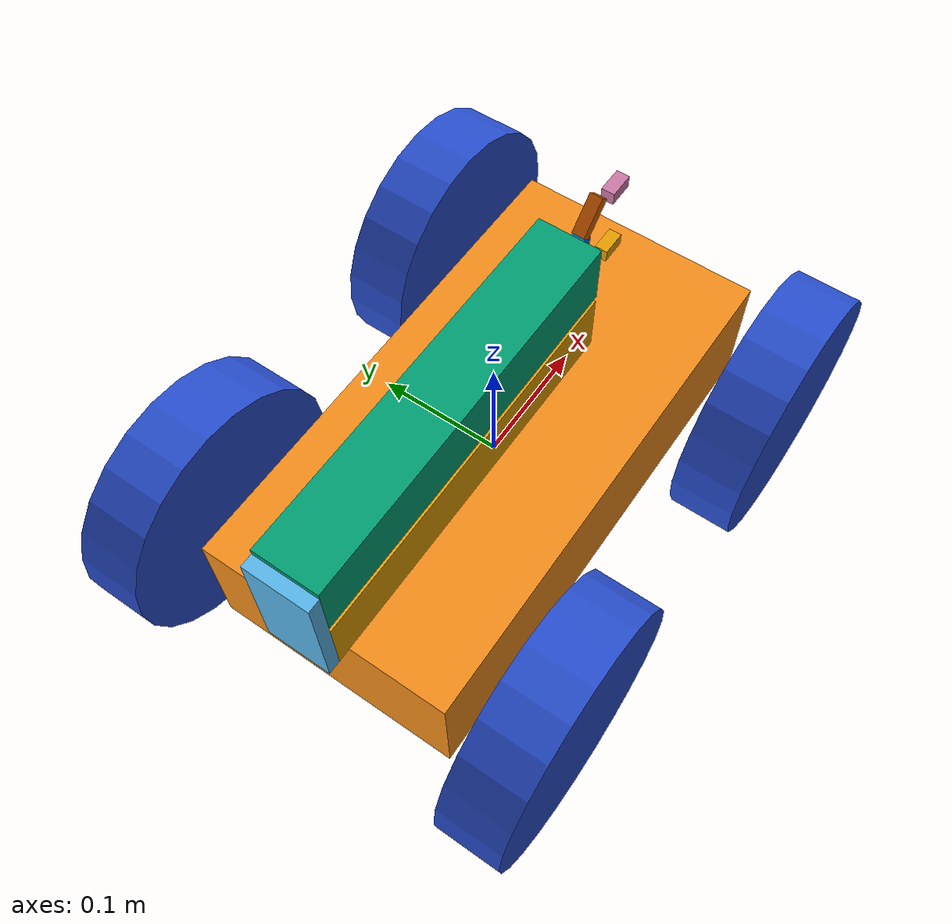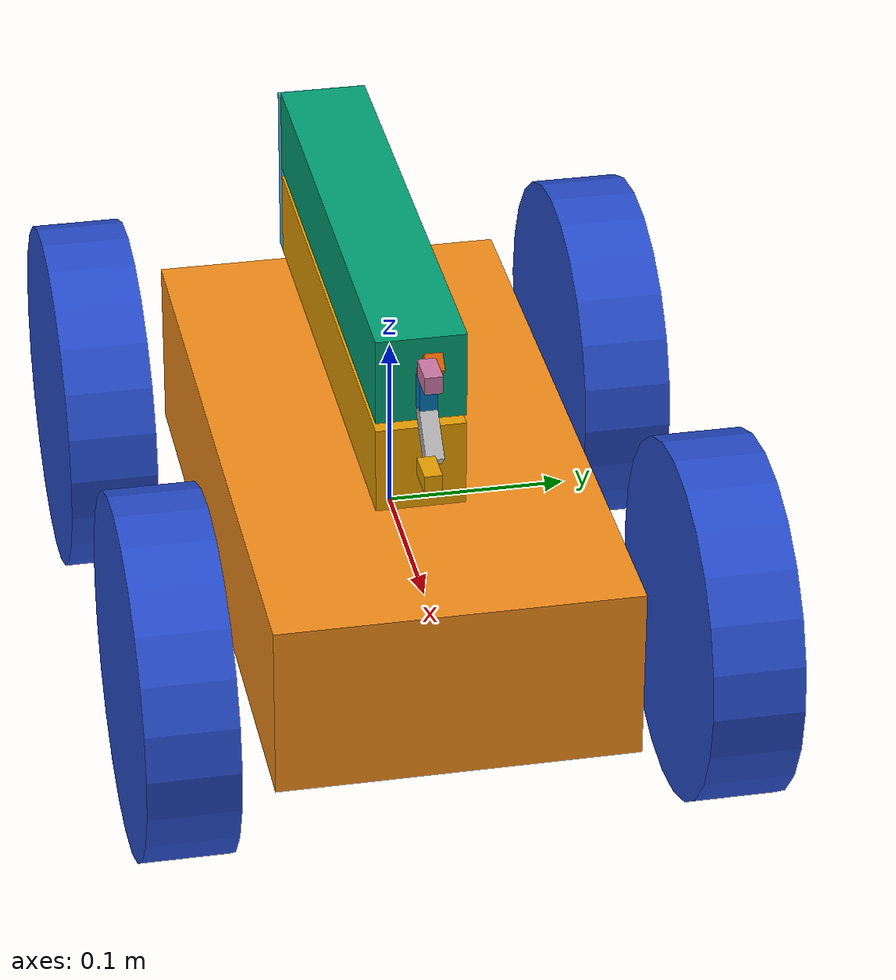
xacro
<?xml version="1.0" ?>
<!-- |    This document was autogenerated by xacro from /home/radi/householder/src/mybot_description/urdf/mybot.xacro | -->
<!-- |    EDITING THIS FILE BY HAND IS NOT RECOMMENDED                                 | -->
<robot name="myrobot" xmlns:xacro="http://www.ros.org/wiki/xacro">
	<gazebo>
        <plugin filename="libgazebo_ros_skid_steer_drive.so" name="skid_steer_drive_controller">
            <alwaysOn>true</alwaysOn>
			<legacyMode>false</legacyMode>
            <updateRate>50</updateRate>
            <leftFrontJoint>left_wheel_hinge</leftFrontJoint>
            <rightFrontJoint>right_wheel_hinge</rightFrontJoint>
			<leftRearJoint>left_wheel_help_hinge</leftRearJoint>
            <rightRearJoint>right_wheel_help_hinge</rightRearJoint>
            <wheelSeparation>0.4</wheelSeparation>
            <wheelDiameter>0.2</wheelDiameter>
			<torque>10</torque>
            <commandTopic>cmd_vel</commandTopic>
            <odometryTopic>odom</odometryTopic>
            <odometryFrame>odom</odometryFrame>
            <robotBaseFrame>chassis</robotBaseFrame>
            <broadcastTF>true</broadcastTF>
            <rosDebugLevel>1</rosDebugLevel>
        </plugin>
    </gazebo>
    <gazebo reference="chassis">
        <material>Gazebo/Orange</material>
        <selfCollide>true</selfCollide>
    </gazebo>
    <gazebo reference="left_wheel">
        <material>Gazebo/Blue</material>
    </gazebo>
    <gazebo reference="right_wheel">
        <material>Gazebo/Blue</material>
    </gazebo>
    <gazebo reference="left_wheel_help">
        <material>Gazebo/Blue</material>
    </gazebo>
    <gazebo reference="right_wheel_help">
        <material>Gazebo/Blue</material>
    </gazebo>
    <gazebo reference="arm_fix">
        <material>Gazebo/Blue</material>
    </gazebo>
    <gazebo reference="link">
        <sensor name="camera" type="depth">
            <update_rate>20</update_rate>
            <camera>
                <horizontal_fov>1.047198</horizontal_fov>
                <image>
                    <width>1080</width>
                    <height>720</height>
                    <format>R8G8B8</format>
                </image>
                <clip>
                    <near>0.01</near>
                    <far>25</far>
                </clip>
            </camera>
            <plugin filename="libgazebo_ros_openni_kinect.so" name="camera_plugin">
                <baseline>0.2</baseline>
                <always_on>1</always_on>
                <updateRate>0.0</updateRate>
                <cameraName>camera</cameraName>
                <imageTopicName>/camera/color/image_raw</imageTopicName>
                <cameraInfoTopicName>/camera/color/camera_info</cameraInfoTopicName>
                <depthImageTopicName>/camera/depth/image_raw</depthImageTopicName>
                <depthImageCameraInfoTopicName>/camera/depth/camera_info</depthImageCameraInfoTopicName>
                <pointCloudTopicName>/camera/depth/points</pointCloudTopicName>
                <frameName>link</frameName>
                <pointCloudCutoff>0.5</pointCloudCutoff>
                <pointCloudCutoffMax>3.0</pointCloudCutoffMax>
                <distortionK1>0</distortionK1>
                <distortionK2>0</distortionK2>
                <distortionK3>0</distortionK3>
                <distortionT1>0</distortionT1>
                <distortionT2>0</distortionT2>
                <CxPrime>0</CxPrime>
                <Cx>0</Cx>
                <Cy>0</Cy>
                <focalLength>0</focalLength>
                <hackBaseline>0</hackBaseline>
            </plugin>
        </sensor>
    </gazebo>
    <gazebo reference="hokuyo">
        <sensor name="head_hokuyo_sensor" type="gpu_ray">
            <visualize>false</visualize>
            <update_rate>20</update_rate>
            <ray>
                <scan>
                    <horizontal>
                        <samples>720</samples>
                        <resolution>1</resolution>
                        <min_angle>-1.5</min_angle>
                        <max_angle>1.5</max_angle>
                    </horizontal>
                </scan>
                <range>
                    <min>0.10</min>
                    <max>20.0</max>
                    <resolution>0.01</resolution>
                </range>
                <noise>
                    <type>gaussian</type>
                    <mean>0.0</mean>
                    <stddev>0.01</stddev>
                </noise>
            </ray>
            <plugin filename="libgazebo_ros_gpu_laser.so" name="gazebo_ros_head_hokuyo_controller">
                <topicName>/mybot/laser/scan</topicName>
                <frameName>hokuyo</frameName>
            </plugin>
        </sensor>
    </gazebo>
    <material name="black">
        <color rgba="0.0 0.0 0.0 1.0" />
    </material>
    <material name="blue">
        <color rgba="0.0 0.0 0.8 1.0" />
    </material>
    <material name="green">
        <color rgba="0.0 0.8 0.0 1.0" />
    </material>
    <material name="grey">
        <color rgba="0.2 0.2 0.2 1.0" />
    </material>
    <material name="orange">
        <color rgba="1.0 0.423529411765 0.0392156862745 1.0" />
    </material>
    <material name="brown">
        <color rgba="0.870588235294 0.811764705882 0.764705882353 1.0" />
    </material>
    <material name="red">
        <color rgba="0.8 0.0 0.0 1.0" />
    </material>
    <material name="white">
        <color rgba="1.0 1.0 1.0 1.0" />
    </material>

    <link name="chassis">

		<inertial>
            <mass value="10.0" />
            <origin rpy=" 0 0 0" xyz="0 0 0.0" />
            <inertia ixx="0.5" ixy="0" ixz="0" iyy="1.0" iyz="0" izz="0.1" />
        </inertial>

        <collision name="collision">
            <origin rpy=" 0 0 0" xyz="0 0 0.0" />
            <geometry>
                <box size="0.4 0.2 0.1" />
            </geometry>
        </collision>
        <visual name="chassis_visual">
            <origin rpy=" 0 0 0" xyz="0 0 0.0" />
            <geometry>
                <box size="0.4 0.2 0.1" />
            </geometry>
        </visual>
    </link>
	<link name="left_wheel_help">
        <collision>
            <origin rpy="0 1.5707 1.5707" xyz="0 0 0" />
            <geometry>
                <cylinder length="0.05" radius="0.1" />
            </geometry>
        </collision>
        <visual>
            <origin rpy="0 1.5707 1.5707" xyz="0 0 0" />
            <geometry>
                <cylinder length="0.05" radius="0.1" />
            </geometry>
        </visual>

		<inertial>
            <origin rpy="0 1.5707 1.5707" xyz="0 0 0" />
            <mass value="5" />
            <cylinder_inertia h="0.05" m="5" r="0.1" />
            <inertia ixx="1.0" ixy="0.0" ixz="0.0" iyy="1.0" iyz="0.0" izz="1.0" />
        </inertial>

    </link>
    <link name="right_wheel_help">
        <collision>
            <origin rpy="0 1.5707 1.5707" xyz="0 0 0" />
            <geometry>
                <cylinder length="0.05" radius="0.1" />
            </geometry>
        </collision>
        <visual>
            <origin rpy="0 1.5707 1.5707" xyz="0 0 0" />
            <geometry>
                <cylinder length="0.05" radius="0.1" />
            </geometry>
        </visual>

<inertial>
            <origin rpy="0 1.5707 1.5707" xyz="0 0 0" />
            <mass value="5" />
            <cylinder_inertia h="0.05" m="5" r="0.1" />
            <inertia ixx="1.0" ixy="0.0" ixz="0.0" iyy="1.0" iyz="0.0" izz="1.0" />
        </inertial>

    </link>
    <link name="left_wheel">
        <!--origin xyz="0.1 0.13 0.1" rpy="0 1.5707 1.5707"/-->
        <collision name="collision">
            <origin rpy="0 1.5707 1.5707" xyz="0 0 0" />
            <geometry>
                <cylinder length="0.05" radius="0.1" />
            </geometry>
        </collision>
        <visual name="left_wheel_visual">
            <origin rpy="0 1.5707 1.5707" xyz="0 0 0" />
            <geometry>
                <cylinder length="0.05" radius="0.1" />
            </geometry>
        </visual>

<inertial>
            <origin rpy="0 1.5707 1.5707" xyz="0 0 0" />
            <mass value="5" />
            <cylinder_inertia h="0.05" m="5" r="0.1" />
            <inertia ixx="1.0" ixy="0.0" ixz="0.0" iyy="1.0" iyz="0.0" izz="1.0" />
        </inertial>

    </link>
    <link name="right_wheel">
        <!--origin xyz="0.1 -0.13 0.1" rpy="0 1.5707 1.5707"/-->
        <collision name="collision">
            <origin rpy="0 1.5707 1.5707" xyz="0 0 0" />
            <geometry>
                <cylinder length="0.05" radius="0.1" />
            </geometry>
        </collision>
        <visual name="right_wheel_visual">
            <origin rpy="0 1.5707 1.5707" xyz="0 0 0" />
            <geometry>
                <cylinder length="0.05" radius="0.1" />
            </geometry>
        </visual>

<inertial>
            <origin rpy="0 1.5707 1.5707" xyz="0 0 0" />
            <mass value="5" />
            <cylinder_inertia h="0.05" m="5" r="0.1" />
            <inertia ixx="1.0" ixy="0.0" ixz="0.0" iyy="1.0" iyz="0.0" izz="1.0" />
        </inertial>

    </link>
    <link name="link">
        <!--box size="0.073000 0.276000 0.072000"/-->

<inertial>
            <mass value="0.001" />
            <origin rpy="0 0 0" xyz="0 0 0" />
            <inertia ixx="0.01" ixy="0.0" ixz="0.0" iyy="0.01" iyz="0.0" izz="0.01" />
        </inertial>

    </link>
    <!-- Hokuyo Laser -->
    <link name="hokuyo">

<inertial>
            <mass value="1e-5" />
            <origin rpy="0 0 0" xyz="0 0 0" />
            <inertia ixx="1e-6" ixy="0" ixz="0" iyy="1e-6" iyz="0" izz="1e-6" />
        </inertial>

    </link>
    <!--     ARM              -->
    <link name="arm_base_plate">

<inertial>
            <origin rpy="0 1.57 1.57" xyz="0 0 0" />
            <mass value="0.001" />
            <cylinder_inertia h="0.01" m="5" r="0.01" />
            <inertia ixx="1.0" ixy="0.0" ixz="0.0" iyy="1.0" iyz="0.0" izz="1.0" />
        </inertial>

    </link>
    <link name="arm_1">
        <pose>0 0 0 0 0 0</pose>

<inertial>
            <mass value="0.003" />
            <origin rpy="0 0 0" xyz="-0.15 0 0" />
            <inertia ixx="0.5" ixy="0" ixz="0" iyy="1.0" iyz="0" izz="0.1" />
        </inertial>

        <collision>
            <origin rpy="0 0 0" xyz="-0.15 0 0" />
            <geometry>
                <box size=".3 .05 .05" />
            </geometry>
        </collision>
        <visual>
            <origin rpy="0 0 0" xyz="-0.15 0 0" />
            <geometry>
                <box size=".3 .05 .05" />
            </geometry>
        </visual>
    </link>
    <link name="arm_connector_1">

<inertial>
            <mass value="0.001" />
            <origin rpy=" 0 0 0" xyz="0.0 0 0" />
            <inertia ixx="0.5" ixy="0" ixz="0" iyy="1.0" iyz="0" izz="0.1" />
        </inertial>

        <collision>
            <geometry>
                <box size=".01 0.05 0.1" />
            </geometry>
        </collision>
        <visual>
            <origin rpy=" 0 0 0" xyz="0 0 0" />
            <geometry>
                <box size=".01 0.05 0.1" />
            </geometry>
        </visual>
    </link>
    <link name="arm_2">

<inertial>
            <mass value="0.002" />
            <origin rpy=" 0 0 0" xyz="0.155 0 0" />
            <inertia ixx="0.5" ixy="0" ixz="0" iyy="1.0" iyz="0" izz="0.1" />
        </inertial>

        <collision>
            <origin rpy="0 0 0" xyz="0.155 0 0" />
            <geometry>
                <box size=".3 .05 .05" />
            </geometry>
        </collision>
        <visual>
            <origin rpy="0 0 0" xyz="0.155 0 0" />
            <geometry>
                <box size=".3 .05 .05" />
            </geometry>
        </visual>
    </link>
    <link name="hand_base_plate">

<inertial>
            <origin rpy="0 1.57 0" xyz="0 0 0" />
            <mass value="0.001" />
            <cylinder_inertia h="0.01" m="5" r="0.01" />
            <inertia ixx="1.0" ixy="0.0" ixz="0.0" iyy="1.0" iyz="0.0" izz="1.0" />
        </inertial>

    </link>
    <joint name="gripper_extension_1" type="continuous">
        <axis xyz="0 0 1" />
        <parent link="chassis" />
        <child link="arm_base_plate" />
        <origin rpy="0 0 0" xyz="0.1 0 0.075" />
		<limit effort="50" velocity="5" />
		<dynamics damping="100.0" friction="0.0" />
    </joint>
    <joint name="gripper_extension_2" type="revolute">
        <axis xyz="0 0 -1" />
        <limit effort="30" lower="0" upper="3.14" velocity="0.5" />
        <parent link="arm_base_plate" />
        <child link="arm_1" />
        <origin rpy="1.571 0 0" xyz="-0.01 0 0" />
		<limit effort="50" velocity="5" />
		<dynamics damping="100.0" friction="0.0" />
    </joint>
    <joint name="gripper_extension_3" type="continuous">
        <origin rpy="1.571 0 0" xyz="-0.305 0.025 0" />
        <parent link="arm_1" />
        <child link="arm_connector_1" />
		<limit effort="50" velocity="5" />
		<dynamics damping="100.0" friction="0.0" />
    </joint>
    <joint name="gripper_extension_4" type="revolute">
        <axis xyz="0 0 1" />
        <limit effort="30" lower="0" upper="3.14" velocity="0.5" />
        <parent link="arm_connector_1" />
        <child link="arm_2" />
        <origin rpy="-1.571 0 0" xyz="0 0 -0.03" />
		<limit effort="50" velocity="5" />
		<dynamics damping="100.0" friction="0.0" />
    </joint>
    <joint name="gripper_extension_5" type="continuous">
        <axis xyz="1 0 0" />
        <parent link="arm_2" />
        <child link="hand_base_plate" />
        <origin rpy="0 0 0" xyz="0.31 0 0" />
    </joint>
    <joint name="camera_joint" type="fixed">
        <axis xyz="0 0 0" />
        <origin rpy="0 0 0" xyz="0.2 0 0.1" />
        <parent link="chassis" />
        <child link="link" />
    </joint>
    <joint name="hokuyo_joint" type="fixed">
        <axis xyz="0 1 0" />
        <origin rpy="0 0 0" xyz="0.2 0 0.2" />
        <parent link="chassis" />
        <child link="hokuyo" />
    </joint>
    <joint name="left_wheel_hinge" type="continuous">
        <origin rpy="0 0 0" xyz="0.15 0.15 0" />
        <child link="left_wheel" />
        <parent link="chassis" />
        <axis rpy="0 0 0" xyz="0 1 0" />
         <limit effort="100" velocity="1000"/>
    	<joint_properties damping="1.0" friction="1.0"/>
    </joint>
    <joint name="right_wheel_hinge" type="continuous">
        <origin rpy="0 0 0" xyz="0.15 -0.15 0" />
        <child link="right_wheel" />
        <parent link="chassis" />
        <axis rpy="0 0 0" xyz="0 1 0" />
         <limit effort="100" velocity="10"/>
    	<joint_properties damping="1.0" friction="1.0"/>
    </joint>
    <joint name="left_wheel_help_hinge" type="continuous">
        <origin rpy="0 0 0" xyz="-0.15 0.15 0" />
        <child link="left_wheel_help" />
        <parent link="chassis" />
        <axis rpy="0 0 0" xyz="0 1 0" />
		<limit effort="100" velocity="10"/>
    	<joint_properties damping="1.0" friction="1.0"/>
	</joint>
    <joint name="right_wheel_help_hinge" type="continuous">
        <origin rpy="0 0 0" xyz="-0.15 -0.15 0" />
        <child link="right_wheel_help" />
        <parent link="chassis" />
        <axis rpy="0 0 0" xyz="0 1 0" />
		<limit effort="100" velocity="10"/>
    	<joint_properties damping="1.0" friction="1.0"/>
    </joint>
    <!-- Hier kommt der Gripper -->
    <link name="palm">

<inertial>
            <origin rpy="0 0 0" xyz="0 0 0" />
            <inertia ixx="0.01" ixy="0.0" ixz="0.0" iyy="0.01" iyz="0.0" izz="0.01" />
            <mass value="0.001" />
        </inertial>

        <collision>
            <origin rpy="0 0 0" xyz="0 0 0" />
            <geometry>
                <box size="0.01 0.02 0.01" />
            </geometry>
        </collision>
        <visual>
            <origin rpy="0 0 0" xyz="0 0 0" />
            <geometry>
                <box size="0.01 0.02 0.01" />
            </geometry>
        </visual>
    </link>
    <link name="left_finger">

<inertial>
            <origin rpy="0 0 -0.78539" xyz="0.01 0.02 0" />
            <inertia ixx="0.01" ixy="0.0" ixz="0.0" iyy="0.01" iyz="0.0" izz="0.01" />
            <mass value="0.005" />
        </inertial>

        <collision>
            <origin rpy="0 0 -0.78539" xyz="0.01 0.02 0" />
            <geometry>
                <box size="0.01 0.03 0.01" />
            </geometry>
        </collision>
        <visual>
            <origin rpy="0 0 -0.78539" xyz="0.01 0.02 0" />
            <geometry>
                <box size="0.01 0.03 0.01" />
            </geometry>
        </visual>
    </link>
    <link name="left_finger_tip">

<inertial>
            <origin rpy="0 0 1.5707" xyz="0.0336 0.03 0.005" />
            <inertia ixx="0.01" ixy="0.0" ixz="0.0" iyy="0.01" iyz="0.0" izz="0.01" />
            <mass value="0.001" />
        </inertial>

        <collision>
            <origin rpy="0 0 1.5707" xyz="0.0336 0.03 0.005" />
            <geometry>
                <box size="0.01 0.02 0.01" />
            </geometry>
        </collision>
        <visual>
            <origin rpy="0 0 1.5707" xyz="0.0336 0.03 0.005" />
            <geometry>
                <box size="0.01 0.02 0.01" />
            </geometry>
        </visual>
    </link>
    <link name="right_finger">

<inertial>
            <origin rpy="0 0 .78539" xyz="0.01 -0.02 0" />
            <inertia ixx="0.01" ixy="0.0" ixz="0.0" iyy="0.01" iyz="0.0" izz="0.01" />
            <mass value="0.001" />
        </inertial>

        <collision>
            <origin rpy="0 0 .78539" xyz="0.01 -0.02 0" />
            <geometry>
                <box size="0.01 0.03 0.01" />
            </geometry>
        </collision>
        <visual>
            <origin rpy="0 0 .78539" xyz="0.01 -0.02 0" />
            <geometry>
                <box size="0.01 0.03 0.01" />
            </geometry>
        </visual>
    </link>
    <link name="right_finger_tip">
        <origin rpy="0 0 1.5707" xyz="0.0336 -0.03 0.005" />

<inertial>
            <inertia ixx="0.01" ixy="0.0" ixz="0.0" iyy="0.01" iyz="0.0" izz="0.01" />
            <mass value="0.001" />
        </inertial>

        <collision>
            <origin rpy="0 0 1.5707" xyz="0.0336 -0.03 0.005" />
            <geometry>
                <box size="0.01 0.02 0.01" />
            </geometry>
        </collision>
        <visual>
            <origin rpy="0 0 1.5707" xyz="0.0336 -0.03 0.005" />
            <geometry>
                <box size="0.01 0.02 0.01" />
            </geometry>
        </visual>
    </link>
    <joint name="arm_baser" type="revolute">
        <axis rpy="0 0 0" xyz="0 1 0" />
        <child link="palm" />
        <parent link="hand_base_plate" />
        <origin rpy="0 0 0" xyz="0.01 0 0" />
        <limit effort="30" lower="-1" upper="1" velocity="0.5" />
    </joint>
    <joint name="palm_left_finger" type="revolute">
        <child link="left_finger" />
        <parent link="palm" />
        <axis rpy="0 0 0" xyz="0 0 1" />
        <limit effort="30" lower="-0.4" upper="0.4" velocity="0.5" />
    </joint>
    <joint name="left_finger_tip" type="revolute">
        <child link="left_finger_tip" />
        <parent link="left_finger" />
        <axis rpy="0 0 0" xyz="0 0 1" />
        <limit effort="30" lower="-0.4" upper="0.4" velocity="0.5" />
    </joint>
    <joint name="palm_right_finger" type="revolute">
        <child link="right_finger" />
        <parent link="palm" />
        <axis rpy="0 0 0" xyz="0 0 1" />
        <limit effort="30" lower="-0.4" upper="0.4" velocity="0.5" />
    </joint>
    <joint name="right_finger_tip" type="revolute">
        <child link="right_finger_tip" />
        <parent link="right_finger" />
        <axis rpy="0 0 0" xyz="0 0 1" />
        <limit effort="30" lower="-0.4" upper="0.4" velocity="0.5" />
    </joint>
    <gazebo>
        <selfCollide>true</selfCollide>
    </gazebo>
    <transmission name="trans_gripper_extension_1">
        <type>transmission_interface/SimpleTransmission</type>
        <joint name="gripper_extension_1">
            <hardwareInterface>hardware_interface/EffortJointInterface</hardwareInterface>
        </joint>
        <actuator name="gripper_extension_1_motor">
            <hardwareInterface>hardware_interface/EffortJointInterface</hardwareInterface>
            <mechanicalReduction>1</mechanicalReduction>
        </actuator>
    </transmission>
    <transmission name="trans_gripper_extension_2">
        <type>transmission_interface/SimpleTransmission</type>
        <joint name="gripper_extension_2">
            <hardwareInterface>hardware_interface/EffortJointInterface</hardwareInterface>
        </joint>
        <actuator name="gripper_extension_2_motor">
            <hardwareInterface>hardware_interface/EffortJointInterface</hardwareInterface>
            <mechanicalReduction>1</mechanicalReduction>
        </actuator>
    </transmission>
    <transmission name="trans_gripper_extension_3">
        <type>transmission_interface/SimpleTransmission</type>
        <joint name="gripper_extension_3">
            <hardwareInterface>hardware_interface/EffortJointInterface</hardwareInterface>
        </joint>
        <actuator name="gripper_extension_3_motor">
            <hardwareInterface>hardware_interface/EffortJointInterface</hardwareInterface>
            <mechanicalReduction>1</mechanicalReduction>
        </actuator>
    </transmission>
    <transmission name="trans_gripper_extension_4">
        <type>transmission_interface/SimpleTransmission</type>
        <joint name="gripper_extension_4">
            <hardwareInterface>hardware_interface/EffortJointInterface</hardwareInterface>
        </joint>
        <actuator name="gripper_extension_4_motor">
            <hardwareInterface>hardware_interface/EffortJointInterface</hardwareInterface>
            <mechanicalReduction>1</mechanicalReduction>
        </actuator>
    </transmission>
    <transmission name="trans_gripper_extension_5">
        <type>transmission_interface/SimpleTransmission</type>
        <joint name="gripper_extension_5">
            <hardwareInterface>hardware_interface/EffortJointInterface</hardwareInterface>
        </joint>
        <actuator name="gripper_extension_5_motor">
            <hardwareInterface>hardware_interface/EffortJointInterface</hardwareInterface>
            <mechanicalReduction>1</mechanicalReduction>
        </actuator>
    </transmission>
    <transmission name="trans_arm_baser">
        <type>transmission_interface/SimpleTransmission</type>
        <joint name="arm_baser">
            <hardwareInterface>hardware_interface/EffortJointInterface</hardwareInterface>
        </joint>
        <actuator name="arm_baser_motor">
            <hardwareInterface>hardware_interface/EffortJointInterface</hardwareInterface>
            <mechanicalReduction>1</mechanicalReduction>
        </actuator>
    </transmission>
    <transmission name="trans_palm_left_finger">
        <type>transmission_interface/SimpleTransmission</type>
        <joint name="palm_left_finger">
            <hardwareInterface>hardware_interface/EffortJointInterface</hardwareInterface>
        </joint>
        <actuator name="palm_left_finger_motor">
            <hardwareInterface>hardware_interface/EffortJointInterface</hardwareInterface>
            <mechanicalReduction>1</mechanicalReduction>
        </actuator>
    </transmission>
    <transmission name="trans_left_finger_tip">
        <type>transmission_interface/SimpleTransmission</type>
        <joint name="left_finger_tip">
            <hardwareInterface>hardware_interface/EffortJointInterface</hardwareInterface>
        </joint>
        <actuator name="left_finger_tip_motor">
            <hardwareInterface>hardware_interface/EffortJointInterface</hardwareInterface>
            <mechanicalReduction>1</mechanicalReduction>
        </actuator>
    </transmission>
    <transmission name="trans_palm_right_finger">
        <type>transmission_interface/SimpleTransmission</type>
        <joint name="palm_right_finger">
            <hardwareInterface>hardware_interface/EffortJointInterface</hardwareInterface>
        </joint>
        <actuator name="palm_right_finger_motor">
            <hardwareInterface>hardware_interface/EffortJointInterface</hardwareInterface>
            <mechanicalReduction>1</mechanicalReduction>
        </actuator>
    </transmission>
    <transmission name="trans_right_finger_tip">
        <type>transmission_interface/SimpleTransmission</type>
        <joint name="right_finger_tip">
            <hardwareInterface>hardware_interface/EffortJointInterface</hardwareInterface>
        </joint>
        <actuator name="right_finger_tip_motor">
            <hardwareInterface>hardware_interface/EffortJointInterface</hardwareInterface>
            <mechanicalReduction>1</mechanicalReduction>
        </actuator>
    </transmission>
    <gazebo>
        <plugin name="gazebo_ros_control" filename="libgazebo_ros_control.so">
			<robotSimType>gazebo_ros_control/DefaultRobotHWSim</robotSimType>
  			<legacyModeNS>false</legacyModeNS>
			<robotNamespace>/move_group</robotNamespace>
        </plugin>
    </gazebo>
</robot>
